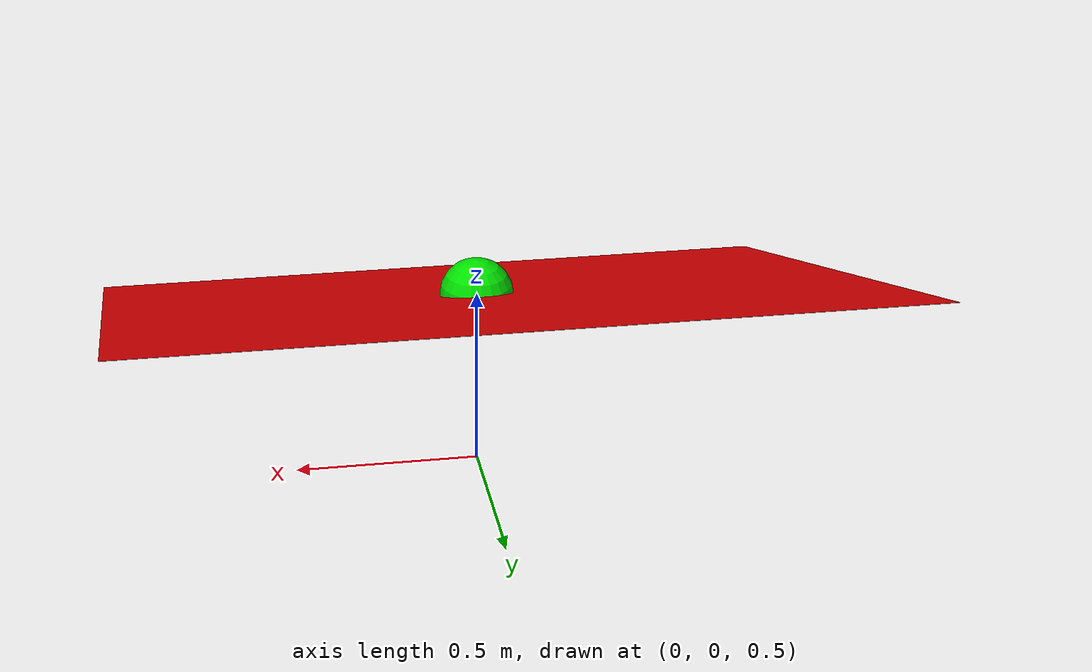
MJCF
<?xml version="1.0" encoding="utf-8"?>
<mujoco>
   <worldbody>
      <light diffuse=".5 .5 .5" pos="0 0 3" dir="0 0 -1"/>

      <body name="plane" pos="0 0 1">
         <geom type="plane" size="1 1 0.1" rgba=".9 0 0 1" euler="20 0 0"/>
      </body>

      <body name="ball" pos="0 0 1">
         <joint type="free"/>
         <geom type="sphere" size="0.1" rgba="0 .9 0 1" friction="0.000001 10 10"/>
      </body>
   </worldbody>
</mujoco>
